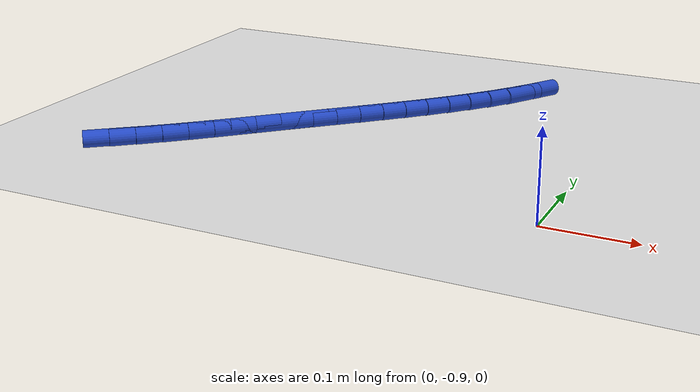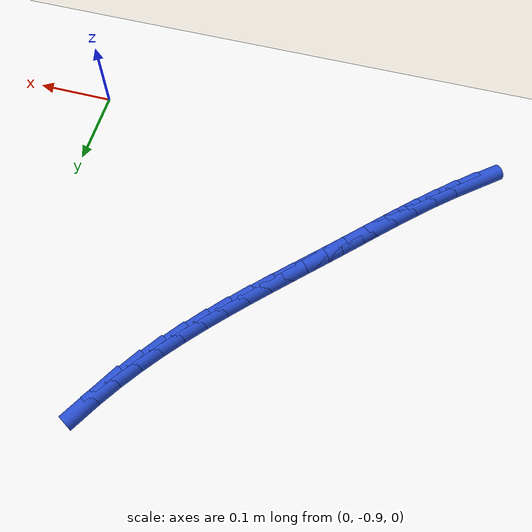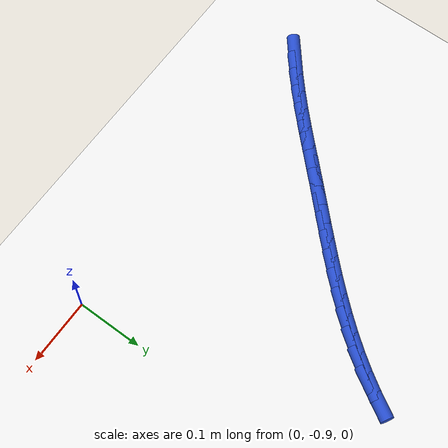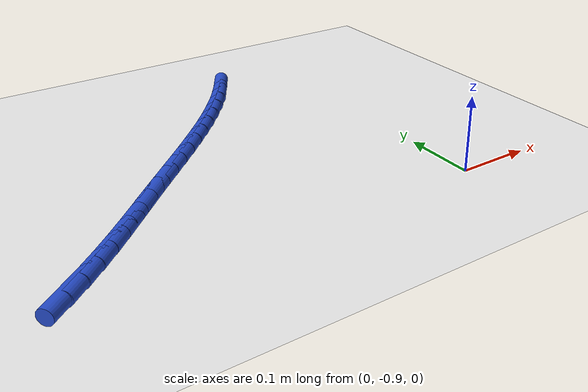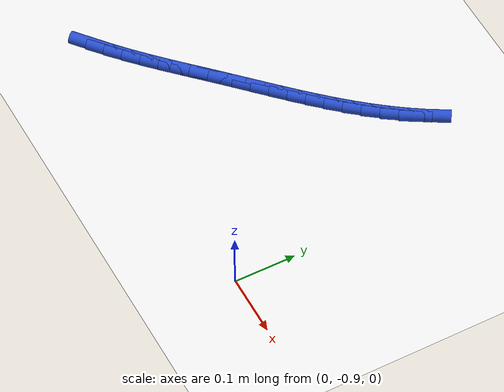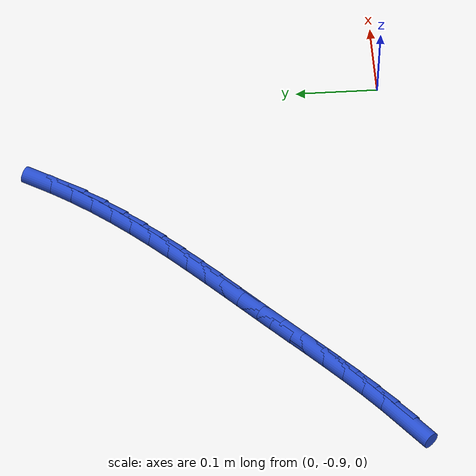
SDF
<sdf version="1.6">
 <world name="default">
  <model name="ground_plane">
   <static>1</static>
   <link name="link">
    <collision name="collision">
     <geometry><plane><normal>0 0 1</normal><size>100 100</size></plane></geometry>
     <surface><friction><ode><mu>100</mu><mu2>50</mu2></ode></friction></surface>
    </collision>
    <visual name="visual">
     <cast_shadows>0</cast_shadows>
     <geometry><plane><normal>0 0 1</normal><size>100 100</size></plane></geometry>
     <material>
      <script><uri>file://media/materials/scripts/gazebo.material</uri><name>Gazebo/WhiteGlow</name></script>
     </material>
    </visual>
   </link>
  </model>
  <model name="line">
   <link name="link_194">
    <pose>-0.4978947914819633 -0.8834757197826741 0.01 0 1.57 0.6862021051984573</pose>
    <collision name="collision">
     <geometry><cylinder><radius>0.01</radius><length>0.08</length></cylinder></geometry>
    </collision>
    <visual name="visual">
     <material>
      <script><name>Gazebo/Blue</name><uri>file://media/materials/scripts/gazebo.material</uri></script>
     </material>
     <geometry><cylinder><radius>0.01</radius><length>0.08</length></cylinder></geometry>
    </visual>
   </link>
   <link name="link_195">
    <pose>-0.4752554646885014 -0.8649347658117845 0.01 0 1.57 0.7201846814071864</pose>
    <collision name="collision">
     <geometry><cylinder><radius>0.01</radius><length>0.08</length></cylinder></geometry>
    </collision>
    <visual name="visual">
     <material>
      <script><name>Gazebo/Blue</name><uri>file://media/materials/scripts/gazebo.material</uri></script>
     </material>
     <geometry><cylinder><radius>0.01</radius><length>0.08</length></cylinder></geometry>
    </visual>
   </link>
   <link name="link_196">
    <pose>-0.45305463074605073 -0.8454558717741661 0.01 0 1.57 0.7468188151175242</pose>
    <collision name="collision">
     <geometry><cylinder><radius>0.01</radius><length>0.08</length></cylinder></geometry>
    </collision>
    <visual name="visual">
     <material>
      <script><name>Gazebo/Blue</name><uri>file://media/materials/scripts/gazebo.material</uri></script>
     </material>
     <geometry><cylinder><radius>0.01</radius><length>0.08</length></cylinder></geometry>
    </visual>
   </link>
   <link name="link_197">
    <pose>-0.4312148710938838 -0.8252394188331234 0.01 0 1.57 0.7664338034385859</pose>
    <collision name="collision">
     <geometry><cylinder><radius>0.01</radius><length>0.08</length></cylinder></geometry>
    </collision>
    <visual name="visual">
     <material>
      <script><name>Gazebo/Blue</name><uri>file://media/materials/scripts/gazebo.material</uri></script>
     </material>
     <geometry><cylinder><radius>0.01</radius><length>0.08</length></cylinder></geometry>
    </visual>
   </link>
   <link name="link_198">
    <pose>-0.4096587671712751 -0.804485788151962 0.01 0 1.57 0.7792851929239444</pose>
    <collision name="collision">
     <geometry><cylinder><radius>0.01</radius><length>0.08</length></cylinder></geometry>
    </collision>
    <visual name="visual">
     <material>
      <script><name>Gazebo/Blue</name><uri>file://media/materials/scripts/gazebo.material</uri></script>
     </material>
     <geometry><cylinder><radius>0.01</radius><length>0.08</length></cylinder></geometry>
    </visual>
   </link>
   <link name="link_199">
    <pose>-0.3883089004174971 -0.7833953608939864 0.01 0 1.57 0.7855346725540536</pose>
    <collision name="collision">
     <geometry><cylinder><radius>0.01</radius><length>0.08</length></cylinder></geometry>
    </collision>
    <visual name="visual">
     <material>
      <script><name>Gazebo/Blue</name><uri>file://media/materials/scripts/gazebo.material</uri></script>
     </material>
     <geometry><cylinder><radius>0.01</radius><length>0.08</length></cylinder></geometry>
    </visual>
   </link>
   <link name="link_200">
    <pose>-0.3670878522718231 -0.7621685182225013 0.01 0 1.57 0.785238211290975</pose>
    <collision name="collision">
     <geometry><cylinder><radius>0.01</radius><length>0.08</length></cylinder></geometry>
    </collision>
    <visual name="visual">
     <material>
      <script><name>Gazebo/Blue</name><uri>file://media/materials/scripts/gazebo.material</uri></script>
     </material>
     <geometry><cylinder><radius>0.01</radius><length>0.08</length></cylinder></geometry>
    </visual>
   </link>
   <link name="link_201">
    <pose>-0.3459182041735259 -0.7410056413008111 0.01 0 1.57 0.780175020559052</pose>
    <collision name="collision">
     <geometry><cylinder><radius>0.01</radius><length>0.08</length></cylinder></geometry>
    </collision>
    <visual name="visual">
     <material>
      <script><name>Gazebo/Blue</name><uri>file://media/materials/scripts/gazebo.material</uri></script>
     </material>
     <geometry><cylinder><radius>0.01</radius><length>0.08</length></cylinder></geometry>
    </visual>
   </link>
   <link name="link_202">
    <pose>-0.32475106563448797 -0.7200584737981321 0.01 0 1.57 0.778027981818065</pose>
    <collision name="collision">
     <geometry><cylinder><radius>0.01</radius><length>0.08</length></cylinder></geometry>
    </collision>
    <visual name="visual">
     <material>
      <script><name>Gazebo/Blue</name><uri>file://media/materials/scripts/gazebo.material</uri></script>
     </material>
     <geometry><cylinder><radius>0.01</radius><length>0.08</length></cylinder></geometry>
    </visual>
   </link>
   <link name="link_203">
    <pose>-0.3036577544194532 -0.6992738164045869 0.01 0 1.57 0.7809033464499348</pose>
    <collision name="collision">
     <geometry><cylinder><radius>0.01</radius><length>0.08</length></cylinder></geometry>
    </collision>
    <visual name="visual">
     <material>
      <script><name>Gazebo/Blue</name><uri>file://media/materials/scripts/gazebo.material</uri></script>
     </material>
     <geometry><cylinder><radius>0.01</radius><length>0.08</length></cylinder></geometry>
    </visual>
   </link>
   <link name="link_204">
    <pose>-0.28274124488644864 -0.678544498503164 0.01 0 1.57 0.7888849513082156</pose>
    <collision name="collision">
     <geometry><cylinder><radius>0.01</radius><length>0.08</length></cylinder></geometry>
    </collision>
    <visual name="visual">
     <material>
      <script><name>Gazebo/Blue</name><uri>file://media/materials/scripts/gazebo.material</uri></script>
     </material>
     <geometry><cylinder><radius>0.01</radius><length>0.08</length></cylinder></geometry>
    </visual>
   </link>
   <link name="link_205">
    <pose>-0.2621045115503776 -0.6577633492093944 0.01 0 1.57 0.8020535807320605</pose>
    <collision name="collision">
     <geometry><cylinder><radius>0.01</radius><length>0.08</length></cylinder></geometry>
    </collision>
    <visual name="visual">
     <material>
      <script><name>Gazebo/Blue</name><uri>file://media/materials/scripts/gazebo.material</uri></script>
     </material>
     <geometry><cylinder><radius>0.01</radius><length>0.08</length></cylinder></geometry>
    </visual>
   </link>
   <link name="link_206">
    <pose>-0.2418505289261426 -0.6368231976388086 0.01 0 1.57 0.8204803348300723</pose>
    <collision name="collision">
     <geometry><cylinder><radius>0.01</radius><length>0.08</length></cylinder></geometry>
    </collision>
    <visual name="visual">
     <material>
      <script><name>Gazebo/Blue</name><uri>file://media/materials/scripts/gazebo.material</uri></script>
     </material>
     <geometry><cylinder><radius>0.01</radius><length>0.08</length></cylinder></geometry>
    </visual>
   </link>
   <link name="link_207">
    <pose>-0.22208227152864782 -0.6156168729069387 0.01 0 1.57 0.8442153441018269</pose>
    <collision name="collision">
     <geometry><cylinder><radius>0.01</radius><length>0.08</length></cylinder></geometry>
    </collision>
    <visual name="visual">
     <material>
      <script><name>Gazebo/Blue</name><uri>file://media/materials/scripts/gazebo.material</uri></script>
     </material>
     <geometry><cylinder><radius>0.01</radius><length>0.08</length></cylinder></geometry>
    </visual>
   </link>
   <link name="link_208">
    <pose>-0.20290271387279593 -0.5940372041293148 0.01 0 1.57 0.8732716680860555</pose>
    <collision name="collision">
     <geometry><cylinder><radius>0.01</radius><length>0.08</length></cylinder></geometry>
    </collision>
    <visual name="visual">
     <material>
      <script><name>Gazebo/Blue</name><uri>file://media/materials/scripts/gazebo.material</uri></script>
     </material>
     <geometry><cylinder><radius>0.01</radius><length>0.08</length></cylinder></geometry>
    </visual>
   </link>
   <link name="link_209">
    <pose>-0.18441483047349033 -0.5719770204214685 0.01 0 1.57 0.9076046702168113</pose>
    <collision name="collision">
     <geometry><cylinder><radius>0.01</radius><length>0.08</length></cylinder></geometry>
    </collision>
    <visual name="visual">
     <material>
      <script><name>Gazebo/Blue</name><uri>file://media/materials/scripts/gazebo.material</uri></script>
     </material>
     <geometry><cylinder><radius>0.01</radius><length>0.08</length></cylinder></geometry>
    </visual>
   </link>
   <link name="link_210">
    <pose>-0.16672159584563342 -0.5493291508989295 0.01 0 1.57 0.9470879728306886</pose>
    <collision name="collision">
     <geometry><cylinder><radius>0.01</radius><length>0.08</length></cylinder></geometry>
    </collision>
    <visual name="visual">
     <material>
      <script><name>Gazebo/Blue</name><uri>file://media/materials/scripts/gazebo.material</uri></script>
     </material>
     <geometry><cylinder><radius>0.01</radius><length>0.08</length></cylinder></geometry>
    </visual>
   </link>
   <link name="link_211">
    <pose>-0.14992598450412942 -0.5259864246772303 0.01 0 1.57 0.9910156725238376</pose>
    <collision name="collision">
     <geometry><cylinder><radius>0.01</radius><length>0.08</length></cylinder></geometry>
    </collision>
    <visual name="visual">
     <material>
      <script><name>Gazebo/Blue</name><uri>file://media/materials/scripts/gazebo.material</uri></script>
     </material>
     <geometry><cylinder><radius>0.01</radius><length>0.08</length></cylinder></geometry>
    </visual>
   </link>
   <link name="link_212">
    <pose>-0.1341226516948283 -0.5018538565006699 0.01 0 1.57 1.0347935942705937</pose>
    <collision name="collision">
     <geometry><cylinder><radius>0.01</radius><length>0.08</length></cylinder></geometry>
    </collision>
    <visual name="visual">
     <material>
      <script><name>Gazebo/Blue</name><uri>file://media/materials/scripts/gazebo.material</uri></script>
     </material>
     <geometry><cylinder><radius>0.01</radius><length>0.08</length></cylinder></geometry>
    </visual>
   </link>
  </model>
 </world>
</sdf>
